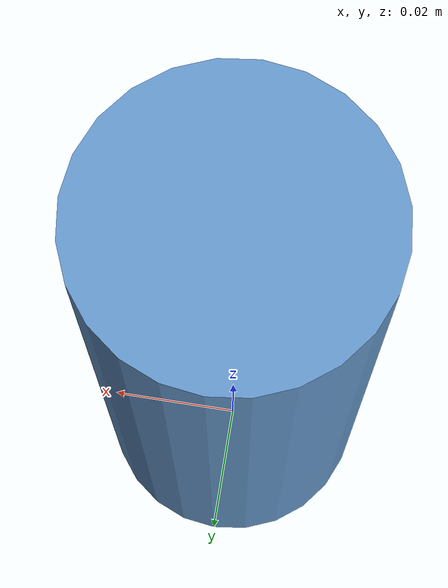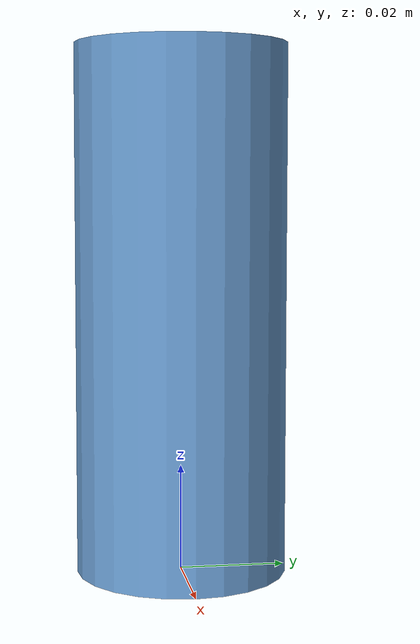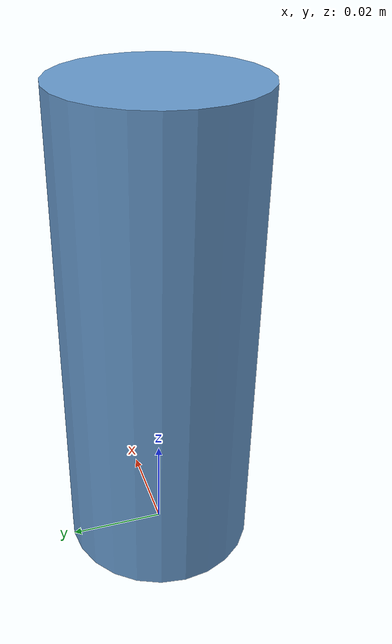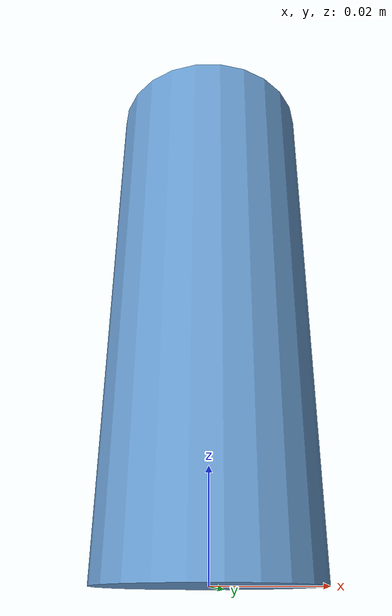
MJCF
<!-- Copyright (c) 2024-2025, Yutaro KIMURA (B-SKY Lab) -->
<mujoco model="rs02_joint">
  <compiler angle="radian" autolimits="true"/>

  <!-- timestep=0.001 → 記録レート 1 kHz と一致; RK4 で剛性摩擦モデルに対応 -->
  <option timestep="0.001" integrator="RK4"/>

  <default>
    <joint armature="0.01" frictionloss="0.10" damping="0.05"/>
    <motor gear="1"/>
  </default>

  <worldbody>
    <body name="motor_base" pos="0 0 0">
      <body name="output_link" pos="0 0 0">
        <!--
          range: ±4π rad（AobaDriverのスケールファクタ上限 = 記録可能な最大範囲）
          actuatorfrcrange: RS-02 ピークトルク ±17 Nm
        -->
        <joint name="joint0"
               type="hinge"
               axis="0 0 1"
               range="-12.566 12.566"
               actuatorfrcrange="-17 17"/>
        <!-- 出力軸のみの慣性（付加質量なし）: 短い円柱を仮定 -->
        <inertial pos="0 0 0.05" mass="0.05" diaginertia="5e-5 5e-5 1e-6"/>
        <!-- 衝突なし（contype=0 conaffinity=0）: sysidに不要 -->
        <geom type="cylinder" size="0.02 0.05" pos="0 0 0.05"
              rgba="0.4 0.6 0.8 1" contype="0" conaffinity="0"/>
      </body>
    </body>
  </worldbody>

  <actuator>
    <!-- ctrl[0] = トルク [Nm]、gear=1 で関節力と 1:1 対応 -->
    <motor name="torque_cmd" joint="joint0" ctrlrange="-17 17"/>
  </actuator>
</mujoco>
